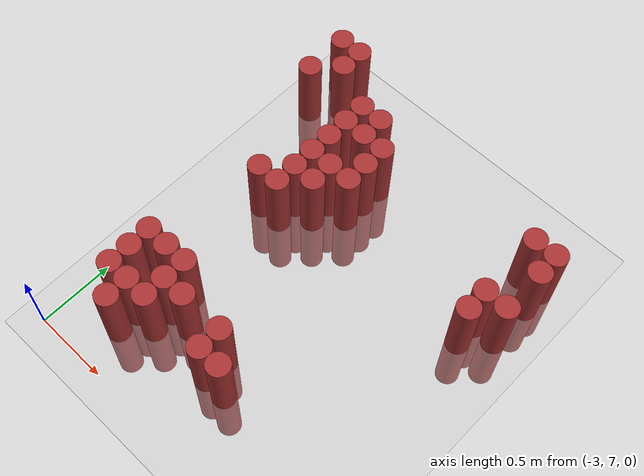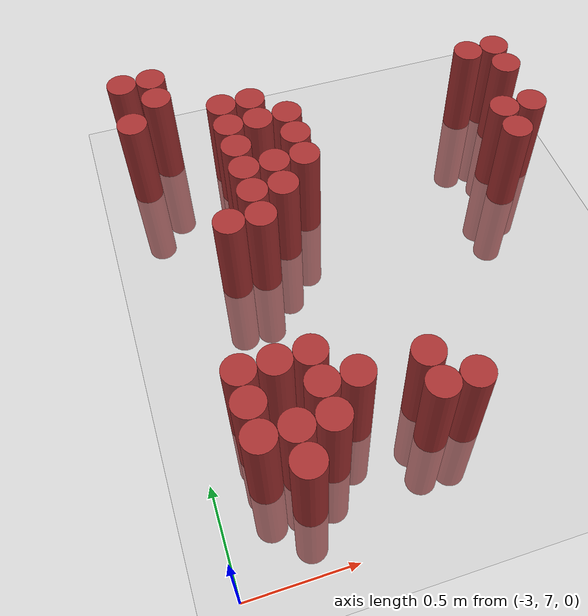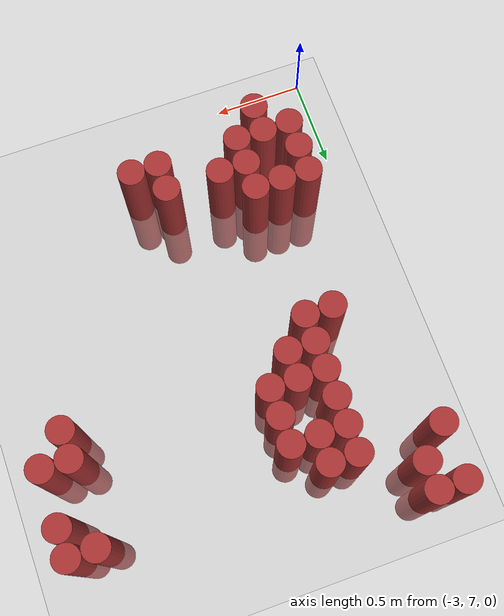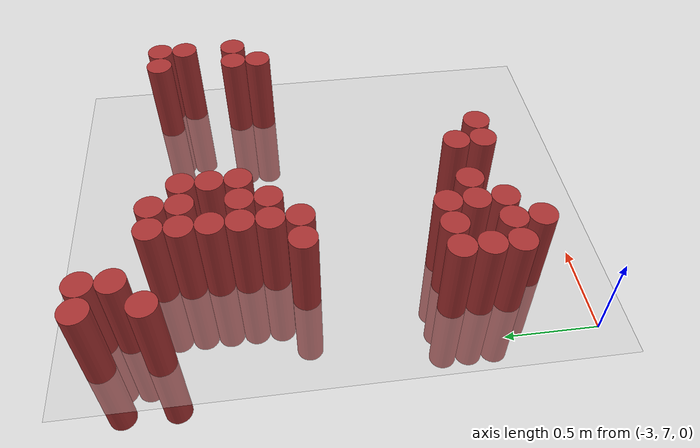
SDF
<sdf version="1.6">
 <world name="default">
  <model name="ground_plane">
   <static>1</static>
   <link name="link">
    <collision name="collision">
     <geometry><plane><normal>0 0 1</normal><size>100 100</size></plane></geometry>
     <surface><friction><ode><mu>100</mu><mu2>50</mu2></ode></friction></surface>
    </collision>
    <visual name="visual">
     <cast_shadows>0</cast_shadows>
     <geometry><plane><normal>0 0 1</normal><size>100 100</size></plane></geometry>
     <material>
      <script><uri>file://media/materials/scripts/gazebo.material</uri><name>Gazebo/Grey</name></script>
     </material>
    </visual>
   </link>
  </model>
  <model name="unit_cylinder_197">
   <static>1</static>
   <pose>-2.925000 9.225000 0.000000 0.000000 0.000000 0.000000</pose>
   <link name="link">
    <inertial>
     <mass>1</mass>
     <inertia><ixx>0.145833</ixx><ixy>0</ixy><ixz>0</ixz><iyy>0.145833</iyy><iyz>0</iyz><izz>0.125</izz></inertia>
    </inertial>
    <collision name="collision">
     <geometry><cylinder><radius>0.075000</radius><length>1</length></cylinder></geometry>
    </collision>
    <visual name="visual">
     <geometry><cylinder><radius>0.075000</radius><length>1</length></cylinder></geometry>
     <material>
      <ambient>0.648000 0.192000 0.192000 1</ambient>
      <diffuse>0.648000 0.192000 0.192000 1</diffuse>
     </material>
     <material>
      <script><name>Gazebo/Grey</name><uri>file://media/materials/scripts/gazebo.material</uri></script>
     </material>
    </visual>
    <sensor name="sensor_contact" type="contact"><contact><collision>collision</collision></contact></sensor>
   </link>
   <plugin filename="gz-sim-touchplugin-system" name="gz::sim::systems::TouchPlugin">
    <target>robot</target>
    <namespace>robot</namespace>
    <time>0.001</time>
    <enabled>true</enabled>
   </plugin>
  </model>
  <model name="unit_cylinder_198">
   <static>1</static>
   <pose>-2.925000 9.525000 0.000000 0.000000 0.000000 0.000000</pose>
   <link name="link">
    <inertial>
     <mass>1</mass>
     <inertia><ixx>0.145833</ixx><ixy>0</ixy><ixz>0</ixz><iyy>0.145833</iyy><iyz>0</iyz><izz>0.125</izz></inertia>
    </inertial>
    <collision name="collision">
     <geometry><cylinder><radius>0.075000</radius><length>1</length></cylinder></geometry>
    </collision>
    <visual name="visual">
     <geometry><cylinder><radius>0.075000</radius><length>1</length></cylinder></geometry>
     <material>
      <ambient>0.648000 0.192000 0.192000 1</ambient>
      <diffuse>0.648000 0.192000 0.192000 1</diffuse>
     </material>
     <material>
      <script><name>Gazebo/Grey</name><uri>file://media/materials/scripts/gazebo.material</uri></script>
     </material>
    </visual>
    <sensor name="sensor_contact" type="contact"><contact><collision>collision</collision></contact></sensor>
   </link>
   <plugin filename="gz-sim-touchplugin-system" name="gz::sim::systems::TouchPlugin">
    <target>robot</target>
    <namespace>robot</namespace>
    <time>0.001</time>
    <enabled>true</enabled>
   </plugin>
  </model>
  <model name="unit_cylinder_202">
   <static>1</static>
   <pose>-2.775000 7.425000 0.000000 0.000000 0.000000 0.000000</pose>
   <link name="link">
    <inertial>
     <mass>1</mass>
     <inertia><ixx>0.145833</ixx><ixy>0</ixy><ixz>0</ixz><iyy>0.145833</iyy><iyz>0</iyz><izz>0.125</izz></inertia>
    </inertial>
    <collision name="collision">
     <geometry><cylinder><radius>0.075000</radius><length>1</length></cylinder></geometry>
    </collision>
    <visual name="visual">
     <geometry><cylinder><radius>0.075000</radius><length>1</length></cylinder></geometry>
     <material>
      <ambient>0.648000 0.192000 0.192000 1</ambient>
      <diffuse>0.648000 0.192000 0.192000 1</diffuse>
     </material>
     <material>
      <script><name>Gazebo/Grey</name><uri>file://media/materials/scripts/gazebo.material</uri></script>
     </material>
    </visual>
    <sensor name="sensor_contact" type="contact"><contact><collision>collision</collision></contact></sensor>
   </link>
   <plugin filename="gz-sim-touchplugin-system" name="gz::sim::systems::TouchPlugin">
    <target>robot</target>
    <namespace>robot</namespace>
    <time>0.001</time>
    <enabled>true</enabled>
   </plugin>
  </model>
  <model name="unit_cylinder_203">
   <static>1</static>
   <pose>-2.775000 7.575000 0.000000 0.000000 0.000000 0.000000</pose>
   <link name="link">
    <inertial>
     <mass>1</mass>
     <inertia><ixx>0.145833</ixx><ixy>0</ixy><ixz>0</ixz><iyy>0.145833</iyy><iyz>0</iyz><izz>0.125</izz></inertia>
    </inertial>
    <collision name="collision">
     <geometry><cylinder><radius>0.075000</radius><length>1</length></cylinder></geometry>
    </collision>
    <visual name="visual">
     <geometry><cylinder><radius>0.075000</radius><length>1</length></cylinder></geometry>
     <material>
      <ambient>0.648000 0.192000 0.192000 1</ambient>
      <diffuse>0.648000 0.192000 0.192000 1</diffuse>
     </material>
     <material>
      <script><name>Gazebo/Grey</name><uri>file://media/materials/scripts/gazebo.material</uri></script>
     </material>
    </visual>
    <sensor name="sensor_contact" type="contact"><contact><collision>collision</collision></contact></sensor>
   </link>
   <plugin filename="gz-sim-touchplugin-system" name="gz::sim::systems::TouchPlugin">
    <target>robot</target>
    <namespace>robot</namespace>
    <time>0.001</time>
    <enabled>true</enabled>
   </plugin>
  </model>
  <model name="unit_cylinder_204">
   <static>1</static>
   <pose>-2.775000 7.725000 0.000000 0.000000 0.000000 0.000000</pose>
   <link name="link">
    <inertial>
     <mass>1</mass>
     <inertia><ixx>0.145833</ixx><ixy>0</ixy><ixz>0</ixz><iyy>0.145833</iyy><iyz>0</iyz><izz>0.125</izz></inertia>
    </inertial>
    <collision name="collision">
     <geometry><cylinder><radius>0.075000</radius><length>1</length></cylinder></geometry>
    </collision>
    <visual name="visual">
     <geometry><cylinder><radius>0.075000</radius><length>1</length></cylinder></geometry>
     <material>
      <ambient>0.648000 0.192000 0.192000 1</ambient>
      <diffuse>0.648000 0.192000 0.192000 1</diffuse>
     </material>
     <material>
      <script><name>Gazebo/Grey</name><uri>file://media/materials/scripts/gazebo.material</uri></script>
     </material>
    </visual>
    <sensor name="sensor_contact" type="contact"><contact><collision>collision</collision></contact></sensor>
   </link>
   <plugin filename="gz-sim-touchplugin-system" name="gz::sim::systems::TouchPlugin">
    <target>robot</target>
    <namespace>robot</namespace>
    <time>0.001</time>
    <enabled>true</enabled>
   </plugin>
  </model>
  <model name="unit_cylinder_205">
   <static>1</static>
   <pose>-2.775000 9.375000 0.000000 0.000000 0.000000 0.000000</pose>
   <link name="link">
    <inertial>
     <mass>1</mass>
     <inertia><ixx>0.145833</ixx><ixy>0</ixy><ixz>0</ixz><iyy>0.145833</iyy><iyz>0</iyz><izz>0.125</izz></inertia>
    </inertial>
    <collision name="collision">
     <geometry><cylinder><radius>0.075000</radius><length>1</length></cylinder></geometry>
    </collision>
    <visual name="visual">
     <geometry><cylinder><radius>0.075000</radius><length>1</length></cylinder></geometry>
     <material>
      <ambient>0.648000 0.192000 0.192000 1</ambient>
      <diffuse>0.648000 0.192000 0.192000 1</diffuse>
     </material>
     <material>
      <script><name>Gazebo/Grey</name><uri>file://media/materials/scripts/gazebo.material</uri></script>
     </material>
    </visual>
    <sensor name="sensor_contact" type="contact"><contact><collision>collision</collision></contact></sensor>
   </link>
   <plugin filename="gz-sim-touchplugin-system" name="gz::sim::systems::TouchPlugin">
    <target>robot</target>
    <namespace>robot</namespace>
    <time>0.001</time>
    <enabled>true</enabled>
   </plugin>
  </model>
  <model name="unit_cylinder_206">
   <static>1</static>
   <pose>-2.775000 9.525000 0.000000 0.000000 0.000000 0.000000</pose>
   <link name="link">
    <inertial>
     <mass>1</mass>
     <inertia><ixx>0.145833</ixx><ixy>0</ixy><ixz>0</ixz><iyy>0.145833</iyy><iyz>0</iyz><izz>0.125</izz></inertia>
    </inertial>
    <collision name="collision">
     <geometry><cylinder><radius>0.075000</radius><length>1</length></cylinder></geometry>
    </collision>
    <visual name="visual">
     <geometry><cylinder><radius>0.075000</radius><length>1</length></cylinder></geometry>
     <material>
      <ambient>0.648000 0.192000 0.192000 1</ambient>
      <diffuse>0.648000 0.192000 0.192000 1</diffuse>
     </material>
     <material>
      <script><name>Gazebo/Grey</name><uri>file://media/materials/scripts/gazebo.material</uri></script>
     </material>
    </visual>
    <sensor name="sensor_contact" type="contact"><contact><collision>collision</collision></contact></sensor>
   </link>
   <plugin filename="gz-sim-touchplugin-system" name="gz::sim::systems::TouchPlugin">
    <target>robot</target>
    <namespace>robot</namespace>
    <time>0.001</time>
    <enabled>true</enabled>
   </plugin>
  </model>
  <model name="unit_cylinder_212">
   <static>1</static>
   <pose>-2.625000 7.275000 0.000000 0.000000 0.000000 0.000000</pose>
   <link name="link">
    <inertial>
     <mass>1</mass>
     <inertia><ixx>0.145833</ixx><ixy>0</ixy><ixz>0</ixz><iyy>0.145833</iyy><iyz>0</iyz><izz>0.125</izz></inertia>
    </inertial>
    <collision name="collision">
     <geometry><cylinder><radius>0.075000</radius><length>1</length></cylinder></geometry>
    </collision>
    <visual name="visual">
     <geometry><cylinder><radius>0.075000</radius><length>1</length></cylinder></geometry>
     <material>
      <ambient>0.648000 0.192000 0.192000 1</ambient>
      <diffuse>0.648000 0.192000 0.192000 1</diffuse>
     </material>
     <material>
      <script><name>Gazebo/Grey</name><uri>file://media/materials/scripts/gazebo.material</uri></script>
     </material>
    </visual>
    <sensor name="sensor_contact" type="contact"><contact><collision>collision</collision></contact></sensor>
   </link>
   <plugin filename="gz-sim-touchplugin-system" name="gz::sim::systems::TouchPlugin">
    <target>robot</target>
    <namespace>robot</namespace>
    <time>0.001</time>
    <enabled>true</enabled>
   </plugin>
  </model>
  <model name="unit_cylinder_213">
   <static>1</static>
   <pose>-2.625000 7.425000 0.000000 0.000000 0.000000 0.000000</pose>
   <link name="link">
    <inertial>
     <mass>1</mass>
     <inertia><ixx>0.145833</ixx><ixy>0</ixy><ixz>0</ixz><iyy>0.145833</iyy><iyz>0</iyz><izz>0.125</izz></inertia>
    </inertial>
    <collision name="collision">
     <geometry><cylinder><radius>0.075000</radius><length>1</length></cylinder></geometry>
    </collision>
    <visual name="visual">
     <geometry><cylinder><radius>0.075000</radius><length>1</length></cylinder></geometry>
     <material>
      <ambient>0.648000 0.192000 0.192000 1</ambient>
      <diffuse>0.648000 0.192000 0.192000 1</diffuse>
     </material>
     <material>
      <script><name>Gazebo/Grey</name><uri>file://media/materials/scripts/gazebo.material</uri></script>
     </material>
    </visual>
    <sensor name="sensor_contact" type="contact"><contact><collision>collision</collision></contact></sensor>
   </link>
   <plugin filename="gz-sim-touchplugin-system" name="gz::sim::systems::TouchPlugin">
    <target>robot</target>
    <namespace>robot</namespace>
    <time>0.001</time>
    <enabled>true</enabled>
   </plugin>
  </model>
  <model name="unit_cylinder_214">
   <static>1</static>
   <pose>-2.625000 7.725000 0.000000 0.000000 0.000000 0.000000</pose>
   <link name="link">
    <inertial>
     <mass>1</mass>
     <inertia><ixx>0.145833</ixx><ixy>0</ixy><ixz>0</ixz><iyy>0.145833</iyy><iyz>0</iyz><izz>0.125</izz></inertia>
    </inertial>
    <collision name="collision">
     <geometry><cylinder><radius>0.075000</radius><length>1</length></cylinder></geometry>
    </collision>
    <visual name="visual">
     <geometry><cylinder><radius>0.075000</radius><length>1</length></cylinder></geometry>
     <material>
      <ambient>0.648000 0.192000 0.192000 1</ambient>
      <diffuse>0.648000 0.192000 0.192000 1</diffuse>
     </material>
     <material>
      <script><name>Gazebo/Grey</name><uri>file://media/materials/scripts/gazebo.material</uri></script>
     </material>
    </visual>
    <sensor name="sensor_contact" type="contact"><contact><collision>collision</collision></contact></sensor>
   </link>
   <plugin filename="gz-sim-touchplugin-system" name="gz::sim::systems::TouchPlugin">
    <target>robot</target>
    <namespace>robot</namespace>
    <time>0.001</time>
    <enabled>true</enabled>
   </plugin>
  </model>
  <model name="unit_cylinder_215">
   <static>1</static>
   <pose>-2.625000 8.475000 0.000000 0.000000 0.000000 0.000000</pose>
   <link name="link">
    <inertial>
     <mass>1</mass>
     <inertia><ixx>0.145833</ixx><ixy>0</ixy><ixz>0</ixz><iyy>0.145833</iyy><iyz>0</iyz><izz>0.125</izz></inertia>
    </inertial>
    <collision name="collision">
     <geometry><cylinder><radius>0.075000</radius><length>1</length></cylinder></geometry>
    </collision>
    <visual name="visual">
     <geometry><cylinder><radius>0.075000</radius><length>1</length></cylinder></geometry>
     <material>
      <ambient>0.648000 0.192000 0.192000 1</ambient>
      <diffuse>0.648000 0.192000 0.192000 1</diffuse>
     </material>
     <material>
      <script><name>Gazebo/Grey</name><uri>file://media/materials/scripts/gazebo.material</uri></script>
     </material>
    </visual>
    <sensor name="sensor_contact" type="contact"><contact><collision>collision</collision></contact></sensor>
   </link>
   <plugin filename="gz-sim-touchplugin-system" name="gz::sim::systems::TouchPlugin">
    <target>robot</target>
    <namespace>robot</namespace>
    <time>0.001</time>
    <enabled>true</enabled>
   </plugin>
  </model>
  <model name="unit_cylinder_225">
   <static>1</static>
   <pose>-2.475000 7.425000 0.000000 0.000000 0.000000 0.000000</pose>
   <link name="link">
    <inertial>
     <mass>1</mass>
     <inertia><ixx>0.145833</ixx><ixy>0</ixy><ixz>0</ixz><iyy>0.145833</iyy><iyz>0</iyz><izz>0.125</izz></inertia>
    </inertial>
    <collision name="collision">
     <geometry><cylinder><radius>0.075000</radius><length>1</length></cylinder></geometry>
    </collision>
    <visual name="visual">
     <geometry><cylinder><radius>0.075000</radius><length>1</length></cylinder></geometry>
     <material>
      <ambient>0.648000 0.192000 0.192000 1</ambient>
      <diffuse>0.648000 0.192000 0.192000 1</diffuse>
     </material>
     <material>
      <script><name>Gazebo/Grey</name><uri>file://media/materials/scripts/gazebo.material</uri></script>
     </material>
    </visual>
    <sensor name="sensor_contact" type="contact"><contact><collision>collision</collision></contact></sensor>
   </link>
   <plugin filename="gz-sim-touchplugin-system" name="gz::sim::systems::TouchPlugin">
    <target>robot</target>
    <namespace>robot</namespace>
    <time>0.001</time>
    <enabled>true</enabled>
   </plugin>
  </model>
  <model name="unit_cylinder_226">
   <static>1</static>
   <pose>-2.475000 7.575000 0.000000 0.000000 0.000000 0.000000</pose>
   <link name="link">
    <inertial>
     <mass>1</mass>
     <inertia><ixx>0.145833</ixx><ixy>0</ixy><ixz>0</ixz><iyy>0.145833</iyy><iyz>0</iyz><izz>0.125</izz></inertia>
    </inertial>
    <collision name="collision">
     <geometry><cylinder><radius>0.075000</radius><length>1</length></cylinder></geometry>
    </collision>
    <visual name="visual">
     <geometry><cylinder><radius>0.075000</radius><length>1</length></cylinder></geometry>
     <material>
      <ambient>0.648000 0.192000 0.192000 1</ambient>
      <diffuse>0.648000 0.192000 0.192000 1</diffuse>
     </material>
     <material>
      <script><name>Gazebo/Grey</name><uri>file://media/materials/scripts/gazebo.material</uri></script>
     </material>
    </visual>
    <sensor name="sensor_contact" type="contact"><contact><collision>collision</collision></contact></sensor>
   </link>
   <plugin filename="gz-sim-touchplugin-system" name="gz::sim::systems::TouchPlugin">
    <target>robot</target>
    <namespace>robot</namespace>
    <time>0.001</time>
    <enabled>true</enabled>
   </plugin>
  </model>
  <model name="unit_cylinder_227">
   <static>1</static>
   <pose>-2.475000 7.725000 0.000000 0.000000 0.000000 0.000000</pose>
   <link name="link">
    <inertial>
     <mass>1</mass>
     <inertia><ixx>0.145833</ixx><ixy>0</ixy><ixz>0</ixz><iyy>0.145833</iyy><iyz>0</iyz><izz>0.125</izz></inertia>
    </inertial>
    <collision name="collision">
     <geometry><cylinder><radius>0.075000</radius><length>1</length></cylinder></geometry>
    </collision>
    <visual name="visual">
     <geometry><cylinder><radius>0.075000</radius><length>1</length></cylinder></geometry>
     <material>
      <ambient>0.648000 0.192000 0.192000 1</ambient>
      <diffuse>0.648000 0.192000 0.192000 1</diffuse>
     </material>
     <material>
      <script><name>Gazebo/Grey</name><uri>file://media/materials/scripts/gazebo.material</uri></script>
     </material>
    </visual>
    <sensor name="sensor_contact" type="contact"><contact><collision>collision</collision></contact></sensor>
   </link>
   <plugin filename="gz-sim-touchplugin-system" name="gz::sim::systems::TouchPlugin">
    <target>robot</target>
    <namespace>robot</namespace>
    <time>0.001</time>
    <enabled>true</enabled>
   </plugin>
  </model>
  <model name="unit_cylinder_228">
   <static>1</static>
   <pose>-2.475000 8.475000 0.000000 0.000000 0.000000 0.000000</pose>
   <link name="link">
    <inertial>
     <mass>1</mass>
     <inertia><ixx>0.145833</ixx><ixy>0</ixy><ixz>0</ixz><iyy>0.145833</iyy><iyz>0</iyz><izz>0.125</izz></inertia>
    </inertial>
    <collision name="collision">
     <geometry><cylinder><radius>0.075000</radius><length>1</length></cylinder></geometry>
    </collision>
    <visual name="visual">
     <geometry><cylinder><radius>0.075000</radius><length>1</length></cylinder></geometry>
     <material>
      <ambient>0.648000 0.192000 0.192000 1</ambient>
      <diffuse>0.648000 0.192000 0.192000 1</diffuse>
     </material>
     <material>
      <script><name>Gazebo/Grey</name><uri>file://media/materials/scripts/gazebo.material</uri></script>
     </material>
    </visual>
    <sensor name="sensor_contact" type="contact"><contact><collision>collision</collision></contact></sensor>
   </link>
   <plugin filename="gz-sim-touchplugin-system" name="gz::sim::systems::TouchPlugin">
    <target>robot</target>
    <namespace>robot</namespace>
    <time>0.001</time>
    <enabled>true</enabled>
   </plugin>
  </model>
  <model name="unit_cylinder_229">
   <static>1</static>
   <pose>-2.475000 8.625000 0.000000 0.000000 0.000000 0.000000</pose>
   <link name="link">
    <inertial>
     <mass>1</mass>
     <inertia><ixx>0.145833</ixx><ixy>0</ixy><ixz>0</ixz><iyy>0.145833</iyy><iyz>0</iyz><izz>0.125</izz></inertia>
    </inertial>
    <collision name="collision">
     <geometry><cylinder><radius>0.075000</radius><length>1</length></cylinder></geometry>
    </collision>
    <visual name="visual">
     <geometry><cylinder><radius>0.075000</radius><length>1</length></cylinder></geometry>
     <material>
      <ambient>0.648000 0.192000 0.192000 1</ambient>
      <diffuse>0.648000 0.192000 0.192000 1</diffuse>
     </material>
     <material>
      <script><name>Gazebo/Grey</name><uri>file://media/materials/scripts/gazebo.material</uri></script>
     </material>
    </visual>
    <sensor name="sensor_contact" type="contact"><contact><collision>collision</collision></contact></sensor>
   </link>
   <plugin filename="gz-sim-touchplugin-system" name="gz::sim::systems::TouchPlugin">
    <target>robot</target>
    <namespace>robot</namespace>
    <time>0.001</time>
    <enabled>true</enabled>
   </plugin>
  </model>
  <model name="unit_cylinder_230">
   <static>1</static>
   <pose>-2.475000 8.775000 0.000000 0.000000 0.000000 0.000000</pose>
   <link name="link">
    <inertial>
     <mass>1</mass>
     <inertia><ixx>0.145833</ixx><ixy>0</ixy><ixz>0</ixz><iyy>0.145833</iyy><iyz>0</iyz><izz>0.125</izz></inertia>
    </inertial>
    <collision name="collision">
     <geometry><cylinder><radius>0.075000</radius><length>1</length></cylinder></geometry>
    </collision>
    <visual name="visual">
     <geometry><cylinder><radius>0.075000</radius><length>1</length></cylinder></geometry>
     <material>
      <ambient>0.648000 0.192000 0.192000 1</ambient>
      <diffuse>0.648000 0.192000 0.192000 1</diffuse>
     </material>
     <material>
      <script><name>Gazebo/Grey</name><uri>file://media/materials/scripts/gazebo.material</uri></script>
     </material>
    </visual>
    <sensor name="sensor_contact" type="contact"><contact><collision>collision</collision></contact></sensor>
   </link>
   <plugin filename="gz-sim-touchplugin-system" name="gz::sim::systems::TouchPlugin">
    <target>robot</target>
    <namespace>robot</namespace>
    <time>0.001</time>
    <enabled>true</enabled>
   </plugin>
  </model>
  <model name="unit_cylinder_231">
   <static>1</static>
   <pose>-2.475000 8.925000 0.000000 0.000000 0.000000 0.000000</pose>
   <link name="link">
    <inertial>
     <mass>1</mass>
     <inertia><ixx>0.145833</ixx><ixy>0</ixy><ixz>0</ixz><iyy>0.145833</iyy><iyz>0</iyz><izz>0.125</izz></inertia>
    </inertial>
    <collision name="collision">
     <geometry><cylinder><radius>0.075000</radius><length>1</length></cylinder></geometry>
    </collision>
    <visual name="visual">
     <geometry><cylinder><radius>0.075000</radius><length>1</length></cylinder></geometry>
     <material>
      <ambient>0.648000 0.192000 0.192000 1</ambient>
      <diffuse>0.648000 0.192000 0.192000 1</diffuse>
     </material>
     <material>
      <script><name>Gazebo/Grey</name><uri>file://media/materials/scripts/gazebo.material</uri></script>
     </material>
    </visual>
    <sensor name="sensor_contact" type="contact"><contact><collision>collision</collision></contact></sensor>
   </link>
   <plugin filename="gz-sim-touchplugin-system" name="gz::sim::systems::TouchPlugin">
    <target>robot</target>
    <namespace>robot</namespace>
    <time>0.001</time>
    <enabled>true</enabled>
   </plugin>
  </model>
  <model name="unit_cylinder_232">
   <static>1</static>
   <pose>-2.475000 9.075000 0.000000 0.000000 0.000000 0.000000</pose>
   <link name="link">
    <inertial>
     <mass>1</mass>
     <inertia><ixx>0.145833</ixx><ixy>0</ixy><ixz>0</ixz><iyy>0.145833</iyy><iyz>0</iyz><izz>0.125</izz></inertia>
    </inertial>
    <collision name="collision">
     <geometry><cylinder><radius>0.075000</radius><length>1</length></cylinder></geometry>
    </collision>
    <visual name="visual">
     <geometry><cylinder><radius>0.075000</radius><length>1</length></cylinder></geometry>
     <material>
      <ambient>0.648000 0.192000 0.192000 1</ambient>
      <diffuse>0.648000 0.192000 0.192000 1</diffuse>
     </material>
     <material>
      <script><name>Gazebo/Grey</name><uri>file://media/materials/scripts/gazebo.material</uri></script>
     </material>
    </visual>
    <sensor name="sensor_contact" type="contact"><contact><collision>collision</collision></contact></sensor>
   </link>
   <plugin filename="gz-sim-touchplugin-system" name="gz::sim::systems::TouchPlugin">
    <target>robot</target>
    <namespace>robot</namespace>
    <time>0.001</time>
    <enabled>true</enabled>
   </plugin>
  </model>
  <model name="unit_cylinder_233">
   <static>1</static>
   <pose>-2.475000 9.225000 0.000000 0.000000 0.000000 0.000000</pose>
   <link name="link">
    <inertial>
     <mass>1</mass>
     <inertia><ixx>0.145833</ixx><ixy>0</ixy><ixz>0</ixz><iyy>0.145833</iyy><iyz>0</iyz><izz>0.125</izz></inertia>
    </inertial>
    <collision name="collision">
     <geometry><cylinder><radius>0.075000</radius><length>1</length></cylinder></geometry>
    </collision>
    <visual name="visual">
     <geometry><cylinder><radius>0.075000</radius><length>1</length></cylinder></geometry>
     <material>
      <ambient>0.648000 0.192000 0.192000 1</ambient>
      <diffuse>0.648000 0.192000 0.192000 1</diffuse>
     </material>
     <material>
      <script><name>Gazebo/Grey</name><uri>file://media/materials/scripts/gazebo.material</uri></script>
     </material>
    </visual>
    <sensor name="sensor_contact" type="contact"><contact><collision>collision</collision></contact></sensor>
   </link>
   <plugin filename="gz-sim-touchplugin-system" name="gz::sim::systems::TouchPlugin">
    <target>robot</target>
    <namespace>robot</namespace>
    <time>0.001</time>
    <enabled>true</enabled>
   </plugin>
  </model>
  <model name="unit_cylinder_236">
   <static>1</static>
   <pose>-2.325000 7.575000 0.000000 0.000000 0.000000 0.000000</pose>
   <link name="link">
    <inertial>
     <mass>1</mass>
     <inertia><ixx>0.145833</ixx><ixy>0</ixy><ixz>0</ixz><iyy>0.145833</iyy><iyz>0</iyz><izz>0.125</izz></inertia>
    </inertial>
    <collision name="collision">
     <geometry><cylinder><radius>0.075000</radius><length>1</length></cylinder></geometry>
    </collision>
    <visual name="visual">
     <geometry><cylinder><radius>0.075000</radius><length>1</length></cylinder></geometry>
     <material>
      <ambient>0.648000 0.192000 0.192000 1</ambient>
      <diffuse>0.648000 0.192000 0.192000 1</diffuse>
     </material>
     <material>
      <script><name>Gazebo/Grey</name><uri>file://media/materials/scripts/gazebo.material</uri></script>
     </material>
    </visual>
    <sensor name="sensor_contact" type="contact"><contact><collision>collision</collision></contact></sensor>
   </link>
   <plugin filename="gz-sim-touchplugin-system" name="gz::sim::systems::TouchPlugin">
    <target>robot</target>
    <namespace>robot</namespace>
    <time>0.001</time>
    <enabled>true</enabled>
   </plugin>
  </model>
  <model name="unit_cylinder_237">
   <static>1</static>
   <pose>-2.325000 8.625000 0.000000 0.000000 0.000000 0.000000</pose>
   <link name="link">
    <inertial>
     <mass>1</mass>
     <inertia><ixx>0.145833</ixx><ixy>0</ixy><ixz>0</ixz><iyy>0.145833</iyy><iyz>0</iyz><izz>0.125</izz></inertia>
    </inertial>
    <collision name="collision">
     <geometry><cylinder><radius>0.075000</radius><length>1</length></cylinder></geometry>
    </collision>
    <visual name="visual">
     <geometry><cylinder><radius>0.075000</radius><length>1</length></cylinder></geometry>
     <material>
      <ambient>0.648000 0.192000 0.192000 1</ambient>
      <diffuse>0.648000 0.192000 0.192000 1</diffuse>
     </material>
     <material>
      <script><name>Gazebo/Grey</name><uri>file://media/materials/scripts/gazebo.material</uri></script>
     </material>
    </visual>
    <sensor name="sensor_contact" type="contact"><contact><collision>collision</collision></contact></sensor>
   </link>
   <plugin filename="gz-sim-touchplugin-system" name="gz::sim::systems::TouchPlugin">
    <target>robot</target>
    <namespace>robot</namespace>
    <time>0.001</time>
    <enabled>true</enabled>
   </plugin>
  </model>
  <model name="unit_cylinder_238">
   <static>1</static>
   <pose>-2.325000 8.775000 0.000000 0.000000 0.000000 0.000000</pose>
   <link name="link">
    <inertial>
     <mass>1</mass>
     <inertia><ixx>0.145833</ixx><ixy>0</ixy><ixz>0</ixz><iyy>0.145833</iyy><iyz>0</iyz><izz>0.125</izz></inertia>
    </inertial>
    <collision name="collision">
     <geometry><cylinder><radius>0.075000</radius><length>1</length></cylinder></geometry>
    </collision>
    <visual name="visual">
     <geometry><cylinder><radius>0.075000</radius><length>1</length></cylinder></geometry>
     <material>
      <ambient>0.648000 0.192000 0.192000 1</ambient>
      <diffuse>0.648000 0.192000 0.192000 1</diffuse>
     </material>
     <material>
      <script><name>Gazebo/Grey</name><uri>file://media/materials/scripts/gazebo.material</uri></script>
     </material>
    </visual>
    <sensor name="sensor_contact" type="contact"><contact><collision>collision</collision></contact></sensor>
   </link>
   <plugin filename="gz-sim-touchplugin-system" name="gz::sim::systems::TouchPlugin">
    <target>robot</target>
    <namespace>robot</namespace>
    <time>0.001</time>
    <enabled>true</enabled>
   </plugin>
  </model>
  <model name="unit_cylinder_239">
   <static>1</static>
   <pose>-2.325000 9.075000 0.000000 0.000000 0.000000 0.000000</pose>
   <link name="link">
    <inertial>
     <mass>1</mass>
     <inertia><ixx>0.145833</ixx><ixy>0</ixy><ixz>0</ixz><iyy>0.145833</iyy><iyz>0</iyz><izz>0.125</izz></inertia>
    </inertial>
    <collision name="collision">
     <geometry><cylinder><radius>0.075000</radius><length>1</length></cylinder></geometry>
    </collision>
    <visual name="visual">
     <geometry><cylinder><radius>0.075000</radius><length>1</length></cylinder></geometry>
     <material>
      <ambient>0.648000 0.192000 0.192000 1</ambient>
      <diffuse>0.648000 0.192000 0.192000 1</diffuse>
     </material>
     <material>
      <script><name>Gazebo/Grey</name><uri>file://media/materials/scripts/gazebo.material</uri></script>
     </material>
    </visual>
    <sensor name="sensor_contact" type="contact"><contact><collision>collision</collision></contact></sensor>
   </link>
   <plugin filename="gz-sim-touchplugin-system" name="gz::sim::systems::TouchPlugin">
    <target>robot</target>
    <namespace>robot</namespace>
    <time>0.001</time>
    <enabled>true</enabled>
   </plugin>
  </model>
  <model name="unit_cylinder_240">
   <static>1</static>
   <pose>-2.325000 9.225000 0.000000 0.000000 0.000000 0.000000</pose>
   <link name="link">
    <inertial>
     <mass>1</mass>
     <inertia><ixx>0.145833</ixx><ixy>0</ixy><ixz>0</ixz><iyy>0.145833</iyy><iyz>0</iyz><izz>0.125</izz></inertia>
    </inertial>
    <collision name="collision">
     <geometry><cylinder><radius>0.075000</radius><length>1</length></cylinder></geometry>
    </collision>
    <visual name="visual">
     <geometry><cylinder><radius>0.075000</radius><length>1</length></cylinder></geometry>
     <material>
      <ambient>0.648000 0.192000 0.192000 1</ambient>
      <diffuse>0.648000 0.192000 0.192000 1</diffuse>
     </material>
     <material>
      <script><name>Gazebo/Grey</name><uri>file://media/materials/scripts/gazebo.material</uri></script>
     </material>
    </visual>
    <sensor name="sensor_contact" type="contact"><contact><collision>collision</collision></contact></sensor>
   </link>
   <plugin filename="gz-sim-touchplugin-system" name="gz::sim::systems::TouchPlugin">
    <target>robot</target>
    <namespace>robot</namespace>
    <time>0.001</time>
    <enabled>true</enabled>
   </plugin>
  </model>
  <model name="unit_cylinder_242">
   <static>1</static>
   <pose>-2.175000 8.775000 0.000000 0.000000 0.000000 0.000000</pose>
   <link name="link">
    <inertial>
     <mass>1</mass>
     <inertia><ixx>0.145833</ixx><ixy>0</ixy><ixz>0</ixz><iyy>0.145833</iyy><iyz>0</iyz><izz>0.125</izz></inertia>
    </inertial>
    <collision name="collision">
     <geometry><cylinder><radius>0.075000</radius><length>1</length></cylinder></geometry>
    </collision>
    <visual name="visual">
     <geometry><cylinder><radius>0.075000</radius><length>1</length></cylinder></geometry>
     <material>
      <ambient>0.648000 0.192000 0.192000 1</ambient>
      <diffuse>0.648000 0.192000 0.192000 1</diffuse>
     </material>
     <material>
      <script><name>Gazebo/Grey</name><uri>file://media/materials/scripts/gazebo.material</uri></script>
     </material>
    </visual>
    <sensor name="sensor_contact" type="contact"><contact><collision>collision</collision></contact></sensor>
   </link>
   <plugin filename="gz-sim-touchplugin-system" name="gz::sim::systems::TouchPlugin">
    <target>robot</target>
    <namespace>robot</namespace>
    <time>0.001</time>
    <enabled>true</enabled>
   </plugin>
  </model>
  <model name="unit_cylinder_243">
   <static>1</static>
   <pose>-2.175000 8.925000 0.000000 0.000000 0.000000 0.000000</pose>
   <link name="link">
    <inertial>
     <mass>1</mass>
     <inertia><ixx>0.145833</ixx><ixy>0</ixy><ixz>0</ixz><iyy>0.145833</iyy><iyz>0</iyz><izz>0.125</izz></inertia>
    </inertial>
    <collision name="collision">
     <geometry><cylinder><radius>0.075000</radius><length>1</length></cylinder></geometry>
    </collision>
    <visual name="visual">
     <geometry><cylinder><radius>0.075000</radius><length>1</length></cylinder></geometry>
     <material>
      <ambient>0.648000 0.192000 0.192000 1</ambient>
      <diffuse>0.648000 0.192000 0.192000 1</diffuse>
     </material>
     <material>
      <script><name>Gazebo/Grey</name><uri>file://media/materials/scripts/gazebo.material</uri></script>
     </material>
    </visual>
    <sensor name="sensor_contact" type="contact"><contact><collision>collision</collision></contact></sensor>
   </link>
   <plugin filename="gz-sim-touchplugin-system" name="gz::sim::systems::TouchPlugin">
    <target>robot</target>
    <namespace>robot</namespace>
    <time>0.001</time>
    <enabled>true</enabled>
   </plugin>
  </model>
  <model name="unit_cylinder_244">
   <static>1</static>
   <pose>-2.175000 9.075000 0.000000 0.000000 0.000000 0.000000</pose>
   <link name="link">
    <inertial>
     <mass>1</mass>
     <inertia><ixx>0.145833</ixx><ixy>0</ixy><ixz>0</ixz><iyy>0.145833</iyy><iyz>0</iyz><izz>0.125</izz></inertia>
    </inertial>
    <collision name="collision">
     <geometry><cylinder><radius>0.075000</radius><length>1</length></cylinder></geometry>
    </collision>
    <visual name="visual">
     <geometry><cylinder><radius>0.075000</radius><length>1</length></cylinder></geometry>
     <material>
      <ambient>0.648000 0.192000 0.192000 1</ambient>
      <diffuse>0.648000 0.192000 0.192000 1</diffuse>
     </material>
     <material>
      <script><name>Gazebo/Grey</name><uri>file://media/materials/scripts/gazebo.material</uri></script>
     </material>
    </visual>
    <sensor name="sensor_contact" type="contact"><contact><collision>collision</collision></contact></sensor>
   </link>
   <plugin filename="gz-sim-touchplugin-system" name="gz::sim::systems::TouchPlugin">
    <target>robot</target>
    <namespace>robot</namespace>
    <time>0.001</time>
    <enabled>true</enabled>
   </plugin>
  </model>
  <model name="unit_cylinder_248">
   <static>1</static>
   <pose>-2.025000 7.425000 0.000000 0.000000 0.000000 0.000000</pose>
   <link name="link">
    <inertial>
     <mass>1</mass>
     <inertia><ixx>0.145833</ixx><ixy>0</ixy><ixz>0</ixz><iyy>0.145833</iyy><iyz>0</iyz><izz>0.125</izz></inertia>
    </inertial>
    <collision name="collision">
     <geometry><cylinder><radius>0.075000</radius><length>1</length></cylinder></geometry>
    </collision>
    <visual name="visual">
     <geometry><cylinder><radius>0.075000</radius><length>1</length></cylinder></geometry>
     <material>
      <ambient>0.648000 0.192000 0.192000 1</ambient>
      <diffuse>0.648000 0.192000 0.192000 1</diffuse>
     </material>
     <material>
      <script><name>Gazebo/Grey</name><uri>file://media/materials/scripts/gazebo.material</uri></script>
     </material>
    </visual>
    <sensor name="sensor_contact" type="contact"><contact><collision>collision</collision></contact></sensor>
   </link>
   <plugin filename="gz-sim-touchplugin-system" name="gz::sim::systems::TouchPlugin">
    <target>robot</target>
    <namespace>robot</namespace>
    <time>0.001</time>
    <enabled>true</enabled>
   </plugin>
  </model>
  <model name="unit_cylinder_249">
   <static>1</static>
   <pose>-2.025000 7.575000 0.000000 0.000000 0.000000 0.000000</pose>
   <link name="link">
    <inertial>
     <mass>1</mass>
     <inertia><ixx>0.145833</ixx><ixy>0</ixy><ixz>0</ixz><iyy>0.145833</iyy><iyz>0</iyz><izz>0.125</izz></inertia>
    </inertial>
    <collision name="collision">
     <geometry><cylinder><radius>0.075000</radius><length>1</length></cylinder></geometry>
    </collision>
    <visual name="visual">
     <geometry><cylinder><radius>0.075000</radius><length>1</length></cylinder></geometry>
     <material>
      <ambient>0.648000 0.192000 0.192000 1</ambient>
      <diffuse>0.648000 0.192000 0.192000 1</diffuse>
     </material>
     <material>
      <script><name>Gazebo/Grey</name><uri>file://media/materials/scripts/gazebo.material</uri></script>
     </material>
    </visual>
    <sensor name="sensor_contact" type="contact"><contact><collision>collision</collision></contact></sensor>
   </link>
   <plugin filename="gz-sim-touchplugin-system" name="gz::sim::systems::TouchPlugin">
    <target>robot</target>
    <namespace>robot</namespace>
    <time>0.001</time>
    <enabled>true</enabled>
   </plugin>
  </model>
  <model name="unit_cylinder_251">
   <static>1</static>
   <pose>-1.875000 7.425000 0.000000 0.000000 0.000000 0.000000</pose>
   <link name="link">
    <inertial>
     <mass>1</mass>
     <inertia><ixx>0.145833</ixx><ixy>0</ixy><ixz>0</ixz><iyy>0.145833</iyy><iyz>0</iyz><izz>0.125</izz></inertia>
    </inertial>
    <collision name="collision">
     <geometry><cylinder><radius>0.075000</radius><length>1</length></cylinder></geometry>
    </collision>
    <visual name="visual">
     <geometry><cylinder><radius>0.075000</radius><length>1</length></cylinder></geometry>
     <material>
      <ambient>0.648000 0.192000 0.192000 1</ambient>
      <diffuse>0.648000 0.192000 0.192000 1</diffuse>
     </material>
     <material>
      <script><name>Gazebo/Grey</name><uri>file://media/materials/scripts/gazebo.material</uri></script>
     </material>
    </visual>
    <sensor name="sensor_contact" type="contact"><contact><collision>collision</collision></contact></sensor>
   </link>
   <plugin filename="gz-sim-touchplugin-system" name="gz::sim::systems::TouchPlugin">
    <target>robot</target>
    <namespace>robot</namespace>
    <time>0.001</time>
    <enabled>true</enabled>
   </plugin>
  </model>
  <model name="unit_cylinder_252">
   <static>1</static>
   <pose>-1.125000 8.625000 0.000000 0.000000 0.000000 0.000000</pose>
   <link name="link">
    <inertial>
     <mass>1</mass>
     <inertia><ixx>0.145833</ixx><ixy>0</ixy><ixz>0</ixz><iyy>0.145833</iyy><iyz>0</iyz><izz>0.125</izz></inertia>
    </inertial>
    <collision name="collision">
     <geometry><cylinder><radius>0.075000</radius><length>1</length></cylinder></geometry>
    </collision>
    <visual name="visual">
     <geometry><cylinder><radius>0.075000</radius><length>1</length></cylinder></geometry>
     <material>
      <ambient>0.648000 0.192000 0.192000 1</ambient>
      <diffuse>0.648000 0.192000 0.192000 1</diffuse>
     </material>
     <material>
      <script><name>Gazebo/Grey</name><uri>file://media/materials/scripts/gazebo.material</uri></script>
     </material>
    </visual>
    <sensor name="sensor_contact" type="contact"><contact><collision>collision</collision></contact></sensor>
   </link>
   <plugin filename="gz-sim-touchplugin-system" name="gz::sim::systems::TouchPlugin">
    <target>robot</target>
    <namespace>robot</namespace>
    <time>0.001</time>
    <enabled>true</enabled>
   </plugin>
  </model>
  <model name="unit_cylinder_253">
   <static>1</static>
   <pose>-1.125000 8.775000 0.000000 0.000000 0.000000 0.000000</pose>
   <link name="link">
    <inertial>
     <mass>1</mass>
     <inertia><ixx>0.145833</ixx><ixy>0</ixy><ixz>0</ixz><iyy>0.145833</iyy><iyz>0</iyz><izz>0.125</izz></inertia>
    </inertial>
    <collision name="collision">
     <geometry><cylinder><radius>0.075000</radius><length>1</length></cylinder></geometry>
    </collision>
    <visual name="visual">
     <geometry><cylinder><radius>0.075000</radius><length>1</length></cylinder></geometry>
     <material>
      <ambient>0.648000 0.192000 0.192000 1</ambient>
      <diffuse>0.648000 0.192000 0.192000 1</diffuse>
     </material>
     <material>
      <script><name>Gazebo/Grey</name><uri>file://media/materials/scripts/gazebo.material</uri></script>
     </material>
    </visual>
    <sensor name="sensor_contact" type="contact"><contact><collision>collision</collision></contact></sensor>
   </link>
   <plugin filename="gz-sim-touchplugin-system" name="gz::sim::systems::TouchPlugin">
    <target>robot</target>
    <namespace>robot</namespace>
    <time>0.001</time>
    <enabled>true</enabled>
   </plugin>
  </model>
  <model name="unit_cylinder_254">
   <static>1</static>
   <pose>-1.125000 9.225000 0.000000 0.000000 0.000000 0.000000</pose>
   <link name="link">
    <inertial>
     <mass>1</mass>
     <inertia><ixx>0.145833</ixx><ixy>0</ixy><ixz>0</ixz><iyy>0.145833</iyy><iyz>0</iyz><izz>0.125</izz></inertia>
    </inertial>
    <collision name="collision">
     <geometry><cylinder><radius>0.075000</radius><length>1</length></cylinder></geometry>
    </collision>
    <visual name="visual">
     <geometry><cylinder><radius>0.075000</radius><length>1</length></cylinder></geometry>
     <material>
      <ambient>0.648000 0.192000 0.192000 1</ambient>
      <diffuse>0.648000 0.192000 0.192000 1</diffuse>
     </material>
     <material>
      <script><name>Gazebo/Grey</name><uri>file://media/materials/scripts/gazebo.material</uri></script>
     </material>
    </visual>
    <sensor name="sensor_contact" type="contact"><contact><collision>collision</collision></contact></sensor>
   </link>
   <plugin filename="gz-sim-touchplugin-system" name="gz::sim::systems::TouchPlugin">
    <target>robot</target>
    <namespace>robot</namespace>
    <time>0.001</time>
    <enabled>true</enabled>
   </plugin>
  </model>
  <model name="unit_cylinder_257">
   <static>1</static>
   <pose>-0.975000 8.775000 0.000000 0.000000 0.000000 0.000000</pose>
   <link name="link">
    <inertial>
     <mass>1</mass>
     <inertia><ixx>0.145833</ixx><ixy>0</ixy><ixz>0</ixz><iyy>0.145833</iyy><iyz>0</iyz><izz>0.125</izz></inertia>
    </inertial>
    <collision name="collision">
     <geometry><cylinder><radius>0.075000</radius><length>1</length></cylinder></geometry>
    </collision>
    <visual name="visual">
     <geometry><cylinder><radius>0.075000</radius><length>1</length></cylinder></geometry>
     <material>
      <ambient>0.648000 0.192000 0.192000 1</ambient>
      <diffuse>0.648000 0.192000 0.192000 1</diffuse>
     </material>
     <material>
      <script><name>Gazebo/Grey</name><uri>file://media/materials/scripts/gazebo.material</uri></script>
     </material>
    </visual>
    <sensor name="sensor_contact" type="contact"><contact><collision>collision</collision></contact></sensor>
   </link>
   <plugin filename="gz-sim-touchplugin-system" name="gz::sim::systems::TouchPlugin">
    <target>robot</target>
    <namespace>robot</namespace>
    <time>0.001</time>
    <enabled>true</enabled>
   </plugin>
  </model>
  <model name="unit_cylinder_258">
   <static>1</static>
   <pose>-0.975000 9.075000 0.000000 0.000000 0.000000 0.000000</pose>
   <link name="link">
    <inertial>
     <mass>1</mass>
     <inertia><ixx>0.145833</ixx><ixy>0</ixy><ixz>0</ixz><iyy>0.145833</iyy><iyz>0</iyz><izz>0.125</izz></inertia>
    </inertial>
    <collision name="collision">
     <geometry><cylinder><radius>0.075000</radius><length>1</length></cylinder></geometry>
    </collision>
    <visual name="visual">
     <geometry><cylinder><radius>0.075000</radius><length>1</length></cylinder></geometry>
     <material>
      <ambient>0.648000 0.192000 0.192000 1</ambient>
      <diffuse>0.648000 0.192000 0.192000 1</diffuse>
     </material>
     <material>
      <script><name>Gazebo/Grey</name><uri>file://media/materials/scripts/gazebo.material</uri></script>
     </material>
    </visual>
    <sensor name="sensor_contact" type="contact"><contact><collision>collision</collision></contact></sensor>
   </link>
   <plugin filename="gz-sim-touchplugin-system" name="gz::sim::systems::TouchPlugin">
    <target>robot</target>
    <namespace>robot</namespace>
    <time>0.001</time>
    <enabled>true</enabled>
   </plugin>
  </model>
  <model name="unit_cylinder_259">
   <static>1</static>
   <pose>-0.975000 9.225000 0.000000 0.000000 0.000000 0.000000</pose>
   <link name="link">
    <inertial>
     <mass>1</mass>
     <inertia><ixx>0.145833</ixx><ixy>0</ixy><ixz>0</ixz><iyy>0.145833</iyy><iyz>0</iyz><izz>0.125</izz></inertia>
    </inertial>
    <collision name="collision">
     <geometry><cylinder><radius>0.075000</radius><length>1</length></cylinder></geometry>
    </collision>
    <visual name="visual">
     <geometry><cylinder><radius>0.075000</radius><length>1</length></cylinder></geometry>
     <material>
      <ambient>0.648000 0.192000 0.192000 1</ambient>
      <diffuse>0.648000 0.192000 0.192000 1</diffuse>
     </material>
     <material>
      <script><name>Gazebo/Grey</name><uri>file://media/materials/scripts/gazebo.material</uri></script>
     </material>
    </visual>
    <sensor name="sensor_contact" type="contact"><contact><collision>collision</collision></contact></sensor>
   </link>
   <plugin filename="gz-sim-touchplugin-system" name="gz::sim::systems::TouchPlugin">
    <target>robot</target>
    <namespace>robot</namespace>
    <time>0.001</time>
    <enabled>true</enabled>
   </plugin>
  </model>
 </world>
</sdf>
